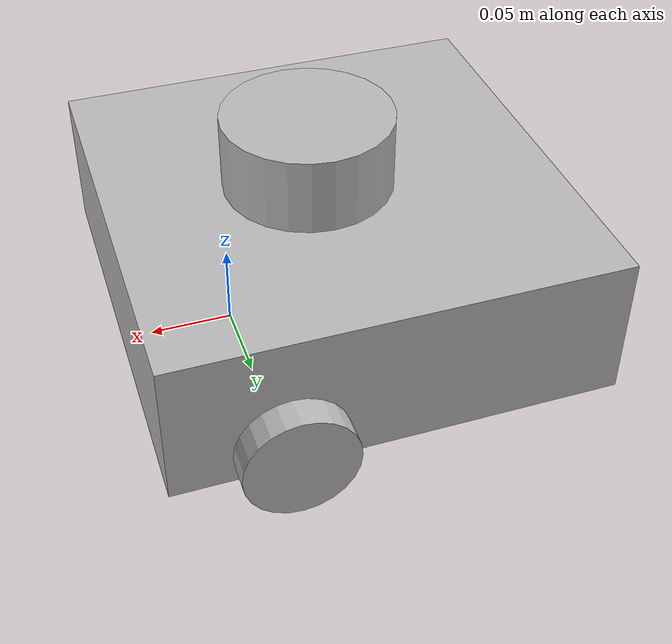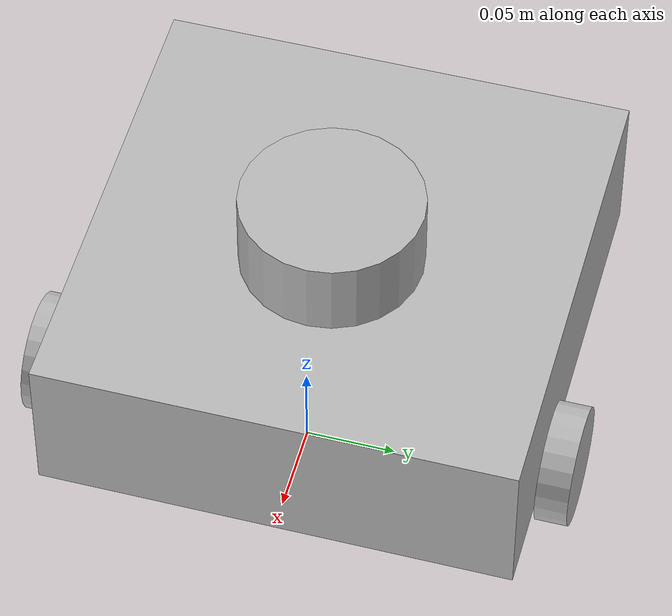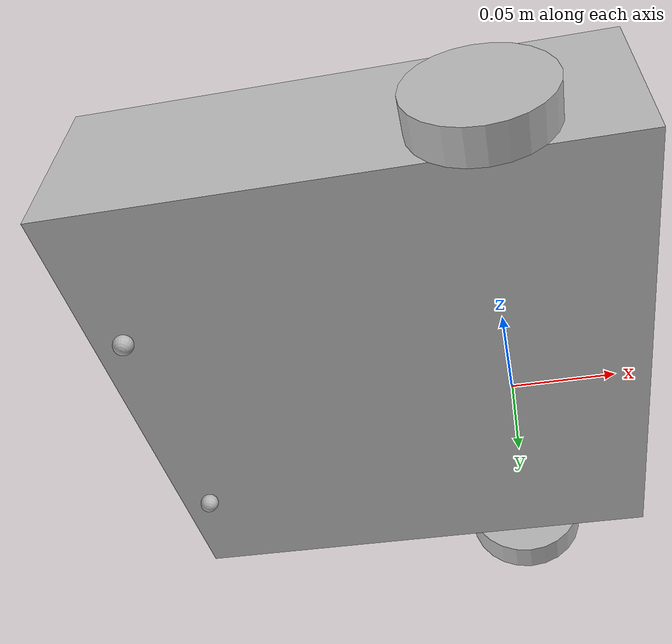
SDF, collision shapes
<?xml version="1.0" ?>
<sdf version="1.5">
  <model name="turtlebot3_waffle">
  <pose>0.0 0.0 0.0 0.0 0.0 0.0</pose>

    <link name="base_footprint"/>

    <link name="base_link">

      <inertial>
        <pose>-0.064 0 0.048 0 0 0</pose>
        <inertia>
          <ixx>0.001</ixx>
          <ixy>0.000</ixy>
          <ixz>0.000</ixz>
          <iyy>0.001</iyy>
          <iyz>0.000</iyz>
          <izz>0.001</izz>
        </inertia>
        <mass>1.0</mass>
      </inertial>

      <collision name="base_collision">
        <pose>-0.064 0 0.048 0 0 0</pose>
        <geometry>
          <box>
            <size>0.265 0.265 0.089</size>
          </box>
        </geometry>
      </collision>

      <visual name="base_visual">
        <pose>-0.064 0 0 0 0 0</pose>
        <geometry>
          <mesh>
            <uri>model://turtlebot3_waffle/meshes/waffle_base.dae</uri>
            <scale>0.001 0.001 0.001</scale>
          </mesh>
        </geometry>
      </visual>
    </link>

    <link name="imu_link">
      <sensor name="tb3_imu" type="imu">
        <always_on>true</always_on>
        <update_rate>200</update_rate>
        <imu>
          <angular_velocity>
            <x>
              <noise type="gaussian">
                <mean>0.0</mean>
                <stddev>2e-4</stddev>
              </noise>
            </x>
            <y>
              <noise type="gaussian">
                <mean>0.0</mean>
                <stddev>2e-4</stddev>
              </noise>
            </y>
            <z>
              <noise type="gaussian">
                <mean>0.0</mean>
                <stddev>2e-4</stddev>
              </noise>
            </z>
          </angular_velocity>
          <linear_acceleration>
            <x>
              <noise type="gaussian">
                <mean>0.0</mean>
                <stddev>1.7e-2</stddev>
              </noise>
            </x>
            <y>
              <noise type="gaussian">
                <mean>0.0</mean>
                <stddev>1.7e-2</stddev>
              </noise>
            </y>
            <z>
              <noise type="gaussian">
                <mean>0.0</mean>
                <stddev>1.7e-2</stddev>
              </noise>
            </z>
          </linear_acceleration>
        </imu>
        <plugin name="turtlebot3_imu" filename="libgazebo_ros_imu_sensor.so">
          <ros>
            <argument>~/out:=imu</argument>
          </ros>
        </plugin>
      </sensor>
    </link>

    <link name="base_scan">
      <inertial>
        <pose>-0.052 0 0.111 0 0 0</pose>
        <inertia>
          <ixx>0.001</ixx>
          <ixy>0.000</ixy>
          <ixz>0.000</ixz>
          <iyy>0.001</iyy>
          <iyz>0.000</iyz>
          <izz>0.001</izz>
        </inertia>
        <mass>0.125</mass>
      </inertial>

      <collision name="lidar_sensor_collision">
        <pose>-0.052 0 0.111 0 0 0</pose>
        <geometry>
          <cylinder>
            <radius>0.0508</radius>
            <length>0.055</length>
          </cylinder>
        </geometry>
      </collision>

      <visual name="lidar_sensor_visual">
        <pose>-0.064 0 0.121 0 0 0</pose>
        <geometry>
          <mesh>
            <uri>model://turtlebot3_waffle/meshes/lds.dae</uri>
            <scale>0.001 0.001 0.001</scale>
          </mesh>
        </geometry>
      </visual>

      <sensor name="hls_lfcd_lds" type="ray">
        <always_on>true</always_on>
        <visualize>true</visualize>
        <pose>-0.064 0 0.121 0 0 0</pose>
        <update_rate>5</update_rate>
        <ray>
          <scan>
            <horizontal>
              <samples>360</samples>
              <resolution>1.000000</resolution>
              <min_angle>0.000000</min_angle>
              <max_angle>6.280000</max_angle>
            </horizontal>
          </scan>
          <range>
            <min>0.120000</min>
            <max>3.5</max>
            <resolution>0.015000</resolution>
          </range>
          <noise>
            <type>gaussian</type>
            <mean>0.0</mean>
            <stddev>0.01</stddev>
          </noise>
        </ray>
        <plugin name="turtlebot3_laserscan" filename="libgazebo_ros_ray_sensor.so">
          <ros>
            <argument>~/out:=scan</argument>
          </ros>
          <output_type>sensor_msgs/LaserScan</output_type>
          <frame_name>base_scan</frame_name>
        </plugin>
      </sensor>
    </link>

    <link name="wheel_left_link">

      <inertial>
        <pose>0.0 0.144 0.023 -1.57 0 0</pose>
        <inertia>
          <ixx>0.001</ixx>
          <ixy>0.000</ixy>
          <ixz>0.000</ixz>
          <iyy>0.001</iyy>
          <iyz>0.000</iyz>
          <izz>0.001</izz>
        </inertia>
        <mass>0.1</mass>
      </inertial>

      <collision name="wheel_left_collision">
        <pose>0.0 0.144 0.023 -1.57 0 0</pose>
        <geometry>
          <cylinder>
            <radius>0.033</radius>
            <length>0.018</length>
          </cylinder>
        </geometry>
        <surface>
          <!-- This friction pamareter don't contain reliable data!! -->
          <friction>
            <ode>
              <mu>100000.0</mu>
              <mu2>100000.0</mu2>
              <fdir1>0 0 0</fdir1>
              <slip1>0.0</slip1>
              <slip2>0.0</slip2>
            </ode>
          </friction>
          <contact>
            <ode>
              <soft_cfm>0</soft_cfm>
              <soft_erp>0.2</soft_erp>
              <kp>1e+5</kp>
              <kd>1</kd>
              <max_vel>0.01</max_vel>
              <min_depth>0.001</min_depth>
            </ode>
          </contact>
        </surface>
      </collision>

      <visual name="wheel_left_visual">
        <pose>0.0 0.144 0.023 0 0 0</pose>
        <geometry>
          <mesh>
            <uri>model://turtlebot3_waffle/meshes/left_tire.dae</uri>
            <scale>0.001 0.001 0.001</scale>
          </mesh>
        </geometry>
      </visual>
    </link>

    <link name="wheel_right_link">

      <inertial>
        <pose>0.0 -0.144 0.023 -1.57 0 0</pose>
        <inertia>
          <ixx>0.001</ixx>
          <ixy>0.000</ixy>
          <ixz>0.000</ixz>
          <iyy>0.001</iyy>
          <iyz>0.000</iyz>
          <izz>0.001</izz>
        </inertia>
        <mass>0.1</mass>
      </inertial>

      <collision name="wheel_right_collision">
        <pose>0.0 -0.144 0.023 -1.57 0 0</pose>
        <geometry>
          <cylinder>
            <radius>0.033</radius>
            <length>0.018</length>
          </cylinder>
        </geometry>
        <surface>
          <!-- This friction pamareter don't contain reliable data!! -->
          <friction>
            <ode>
              <mu>100000.0</mu>
              <mu2>100000.0</mu2>
              <fdir1>0 0 0</fdir1>
              <slip1>0.0</slip1>
              <slip2>0.0</slip2>
            </ode>
          </friction>
          <contact>
            <ode>
              <soft_cfm>0</soft_cfm>
              <soft_erp>0.2</soft_erp>
              <kp>1e+5</kp>
              <kd>1</kd>
              <max_vel>0.01</max_vel>
              <min_depth>0.001</min_depth>
            </ode>
          </contact>
        </surface>
      </collision>

      <visual name="wheel_right_visual">
        <pose>0.0 -0.144 0.023 0 0 0</pose>
        <geometry>
          <mesh>
            <uri>model://turtlebot3_waffle/meshes/right_tire.dae</uri>
            <scale>0.001 0.001 0.001</scale>
          </mesh>
        </geometry>
      </visual>
    </link>

    <link name='caster_back_right_link'>
      <pose>-0.177 -0.064 -0.004 0 0 0</pose>
      <inertial>
        <mass>0.001</mass>
        <inertia>
          <ixx>0.00001</ixx>
          <ixy>0.000</ixy>
          <ixz>0.000</ixz>
          <iyy>0.00001</iyy>
          <iyz>0.000</iyz>
          <izz>0.00001</izz>
        </inertia>
      </inertial>
      <collision name='collision'>
        <geometry>
          <sphere>
            <radius>0.005000</radius>
          </sphere>
        </geometry>
        <surface>
          <contact>
            <ode>
              <soft_cfm>0</soft_cfm>
              <soft_erp>0.2</soft_erp>
              <kp>1e+5</kp>
              <kd>1</kd>
              <max_vel>0.01</max_vel>
              <min_depth>0.001</min_depth>
            </ode>
          </contact>
        </surface>
      </collision>
    </link>

    <link name='caster_back_left_link'>
      <pose>-0.177 0.064 -0.004 0 0 0</pose>
      <inertial>
        <mass>0.001</mass>
        <inertia>
          <ixx>0.00001</ixx>
          <ixy>0.000</ixy>
          <ixz>0.000</ixz>
          <iyy>0.00001</iyy>
          <iyz>0.000</iyz>
          <izz>0.00001</izz>
        </inertia>
      </inertial>
      <collision name='collision'>
        <geometry>
          <sphere>
            <radius>0.005000</radius>
          </sphere>
        </geometry>
        <surface>
          <contact>
            <ode>
              <soft_cfm>0</soft_cfm>
              <soft_erp>0.2</soft_erp>
              <kp>1e+5</kp>
              <kd>1</kd>
              <max_vel>0.01</max_vel>
              <min_depth>0.001</min_depth>
            </ode>
          </contact>
        </surface>
      </collision>
    </link>

    <link name="realsense_link">
      <inertial>
        <pose>0 0 0.05 0 0 0</pose>
        <inertia>
          <ixx>0.001</ixx>
          <ixy>0.000</ixy>
          <ixz>0.000</ixz>
          <iyy>0.001</iyy>
          <iyz>0.000</iyz>
          <izz>0.001</izz>
        </inertia>
        <mass>0.035</mass>
      </inertial>

      <collision name="collision">
        <pose>0 0.047 0 0 0 0</pose>
        <geometry>
          <box>
            <size>0.008 0.130 0.022</size>
          </box>
        </geometry>
      </collision>
      <pose>0 0 0.05 0 0 0</pose>

      <sensor name="intel_realsense_r200_depth" type="depth">
        <always_on>1</always_on>
        <update_rate>1</update_rate>
        <pose>0 0 0.05 0 0 0</pose>
        <camera name="realsense_depth_camera">
        </camera>
	<plugin name="intel_realsense_r200_depth_driver" filename="libgazebo_ros_camera.so">
            <ros>
            </ros>
            <camera_name>intel_realsense_r200_depth</camera_name>
            <frame_name>realsense_depth_frame</frame_name>
            <hack_baseline>0.07</hack_baseline>
            <min_depth>0.001</min_depth>
          </plugin>
      </sensor>

      <sensor name="intel_realsense_r200_rgb" type="camera">
        <always_on>true</always_on>
        <visualize>true</visualize>
        <update_rate>30</update_rate>
	<pose>0 0 0.05 0 0 0</pose>
        <camera name="realsense_rgb_camera">
          <horizontal_fov>1.02974</horizontal_fov>
          <image>
            <width>1920</width>
            <height>1080</height>
            <format>R8G8B8</format>
          </image>
          <clip>
            <near>0.02</near>
            <far>300</far>
          </clip>
          <noise>
            <type>gaussian</type>
            <mean>0.0</mean>
            <stddev>0.007</stddev>
          </noise>
        </camera>
          <plugin name="intel_realsense_r200_rgb_driver" filename="libgazebo_ros_camera.so">
            <ros>
            </ros>
            <camera_name>intel_realsense_r200_rgb</camera_name>
            <frame_name>realsense_rgb_frame</frame_name>
            <hack_baseline>0.07</hack_baseline>
          </plugin>
      </sensor>
    </link>

    <link name="camera_link"/>

    <link name="camera_rgb_optical_frame">
      <inertial>
        <pose>0.076 0.0 0.093 0 0 0</pose>
        <inertia>
          <ixx>0.001</ixx>
          <ixy>0.000</ixy>
          <ixz>0.000</ixz>
          <iyy>0.001</iyy>
          <iyz>0.000</iyz>
          <izz>0.001</izz>
        </inertia>
        <mass>0.035</mass>
      </inertial>

      <pose>0.076 0.0 0.093 0 0 0</pose>
      <sensor name="camera" type="camera">
        <always_on>true</always_on>
        <visualize>true</visualize>
        <update_rate>30</update_rate>
        <camera name="picam">
          <horizontal_fov>1.085595</horizontal_fov>
          <image>
              <width>640</width>
              <height>480</height>
              <format>R8G8B8</format>
          </image>
          <clip>
              <near>0.03</near>
              <far>100</far>
          </clip>
          <noise>
            <type>gaussian</type>
            <mean>0.0</mean>
            <stddev>0.007</stddev>
          </noise>
        </camera>
          <plugin name="camera_driver" filename="libgazebo_ros_camera.so">
            <ros>
            </ros>
          </plugin>
      </sensor>
    </link>

    <joint name="base_joint" type="fixed">
      <parent>base_footprint</parent>
      <child>base_link</child>
      <pose>0.0 0.0 0.010 0 0 0</pose>
    </joint>

    <joint name="wheel_left_joint" type="revolute">
      <parent>base_link</parent>
      <child>wheel_left_link</child>
      <pose>0.0 0.144 0.023 -1.57 0 0</pose>
      <axis>
        <xyz>0 0 1</xyz>
      </axis>
    </joint>

    <joint name="wheel_right_joint" type="revolute">
      <parent>base_link</parent>
      <child>wheel_right_link</child>
      <pose>0.0 -0.144 0.023 -1.57 0 0</pose>
      <axis>
        <xyz>0 0 1</xyz>
      </axis>
    </joint>

    <joint name='caster_back_right_joint' type='ball'>
      <parent>base_link</parent>
      <child>caster_back_right_link</child>
    </joint>

    <joint name='caster_back_left_joint' type='ball'>
      <parent>base_link</parent>
      <child>caster_back_left_link</child>
    </joint>

    <joint name="lidar_joint" type="fixed">
      <parent>base_link</parent>
      <child>base_scan</child>
      <pose>-0.064 0 0.121 0 0 0</pose>
      <axis>
        <xyz>0 0 1</xyz>
      </axis>
    </joint>

    <joint name="camera_joint" type="fixed">
      <parent>base_link</parent>
      <child>realsense_link</child>
    </joint>

    <joint name="camera_joint" type="fixed">
      <parent>base_link</parent>
      <child>camera_link</child>
      <pose>0.073 -0.011 0.084 0 0 0</pose>
      <axis>
        <xyz>0 0 1</xyz>
      </axis>
    </joint>

    <joint name="camera_rgb_joint" type="fixed">
      <parent>camera_link</parent>
      <child>camera_rgb_optical_frame</child>
      <pose>0.003 0.011 0.009 0 0 0</pose>
      <axis>
        <xyz>0 0 1</xyz>
      </axis>
    </joint>

    <plugin name="turtlebot3_diff_drive" filename="libgazebo_ros_diff_drive.so">

      <ros>
      </ros>

      <update_rate>30</update_rate>

      <!-- wheels -->
      <left_joint>wheel_left_joint</left_joint>
      <right_joint>wheel_right_joint</right_joint>

      <!-- kinematics -->
      <wheel_separation>0.287</wheel_separation>
      <wheel_diameter>0.066</wheel_diameter>

      <!-- limits -->
      <max_wheel_torque>20</max_wheel_torque>
      <max_wheel_acceleration>1.0</max_wheel_acceleration>

      <command_topic>cmd_vel</command_topic>

      <!-- output -->
      <publish_odom>true</publish_odom>
      <publish_odom_tf>true</publish_odom_tf>
      <publish_wheel_tf>false</publish_wheel_tf>

      <odometry_topic>odom</odometry_topic>
      <odometry_frame>odom</odometry_frame>
      <robot_base_frame>base_footprint</robot_base_frame>

    </plugin>

    <plugin name="turtlebot3_joint_state" filename="libgazebo_ros_joint_state_publisher.so">
      <ros>
        <argument>~/out:=joint_states</argument>
      </ros>
      <update_rate>30</update_rate>
      <joint_name>wheel_left_joint</joint_name>
      <joint_name>wheel_right_joint</joint_name>
    </plugin>

  </model>
</sdf>
